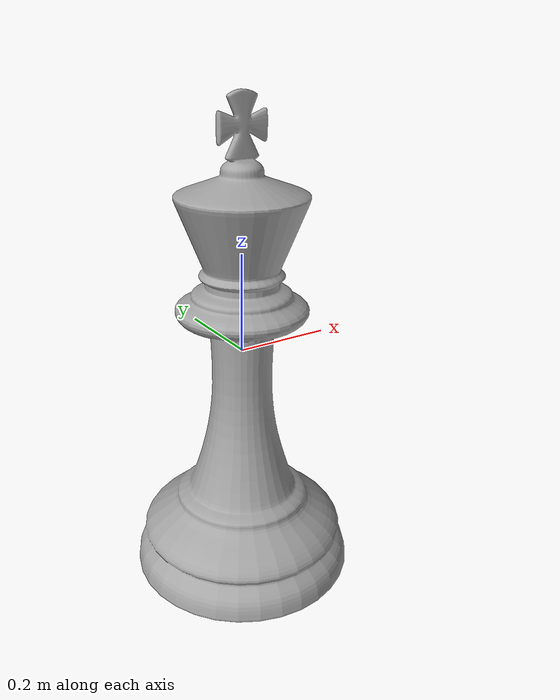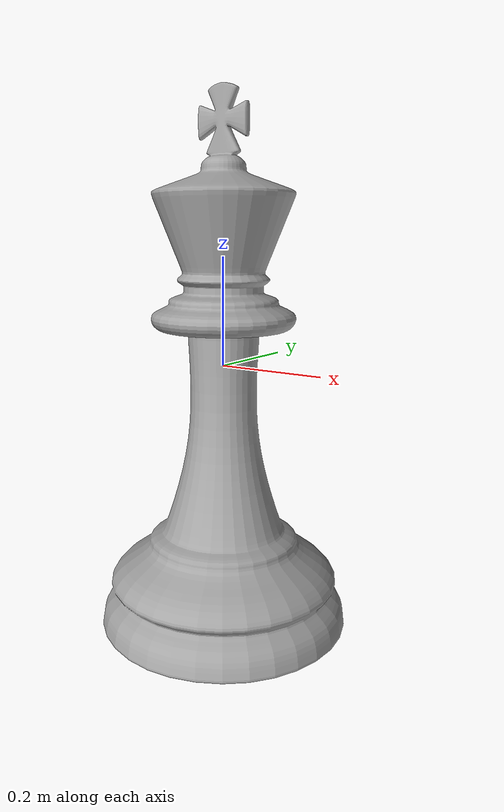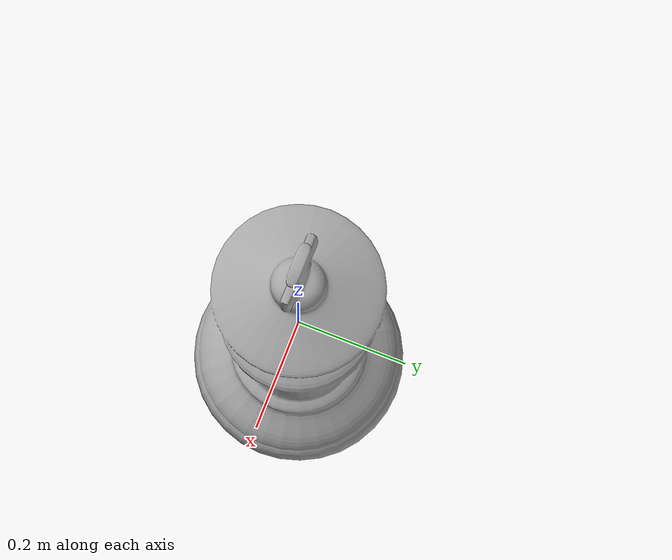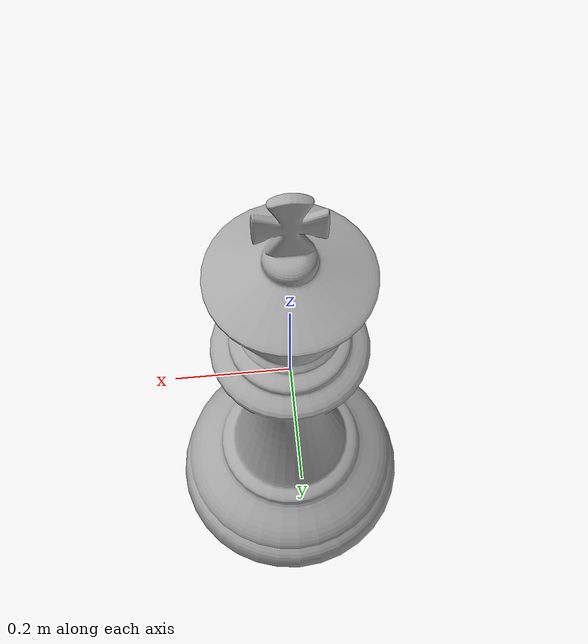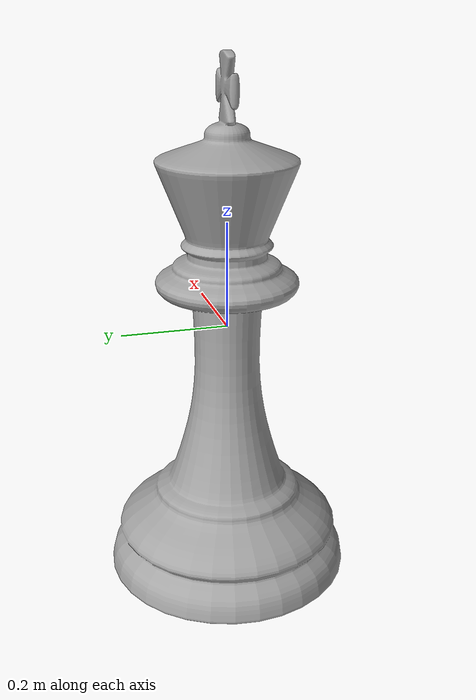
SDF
<?xml version="1.0" ?>
<sdf version="1.5">
  <model name='chess1'>
    <pose>0 0 0 0 0 0</pose>
    <static>1</static>
    <link name='body'>
      <collision name="chess1-coll">
        <pose>0 0 -0.5 0 0 0</pose>
        <geometry>
          <mesh>
            <uri>model://chess1/meshes/chess1.dae</uri>
          </mesh>
        </geometry>
      </collision>
      <visual name='chess1'>
        <cast_shadows>1</cast_shadows>
        <pose>0 0 -0.5 0 0 0</pose>
        <geometry>
          <mesh>
            <uri>model://chess1/meshes/chess1.dae</uri>
          </mesh>
        </geometry>
      </visual>
      <velocity_decay>
        <linear>0</linear>
        <angular>0</angular>
      </velocity_decay>
      <self_collide>0</self_collide>
      <kinematic>0</kinematic>
      <gravity>1</gravity>
    </link>
  </model>

</sdf>
